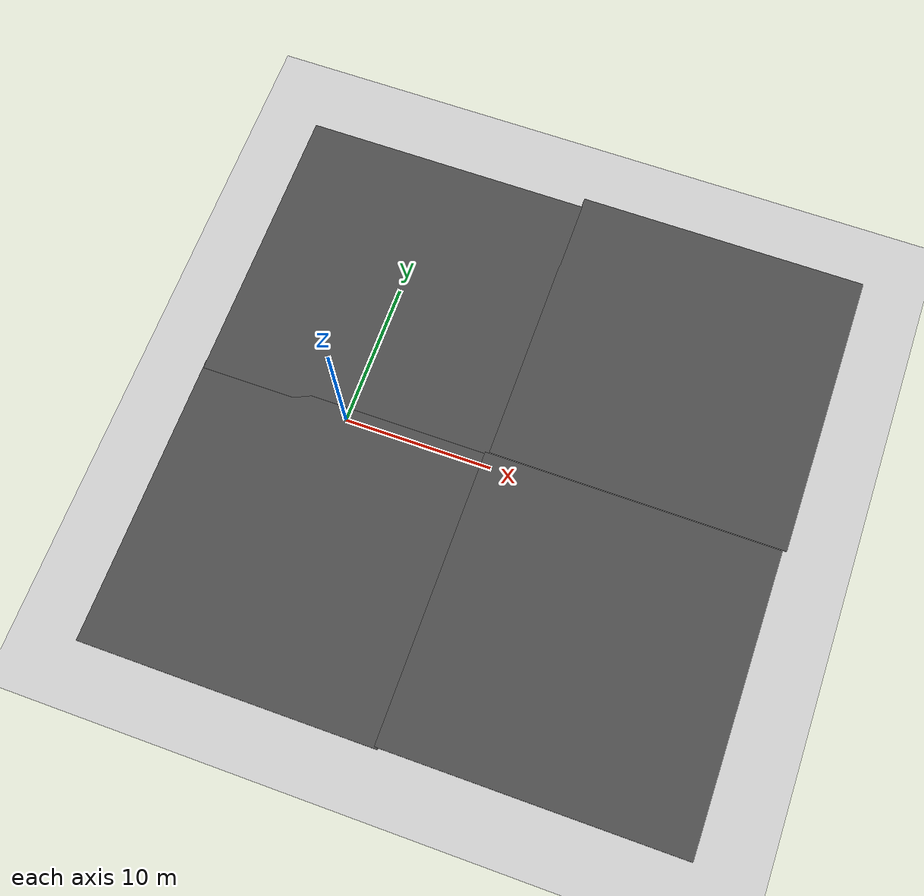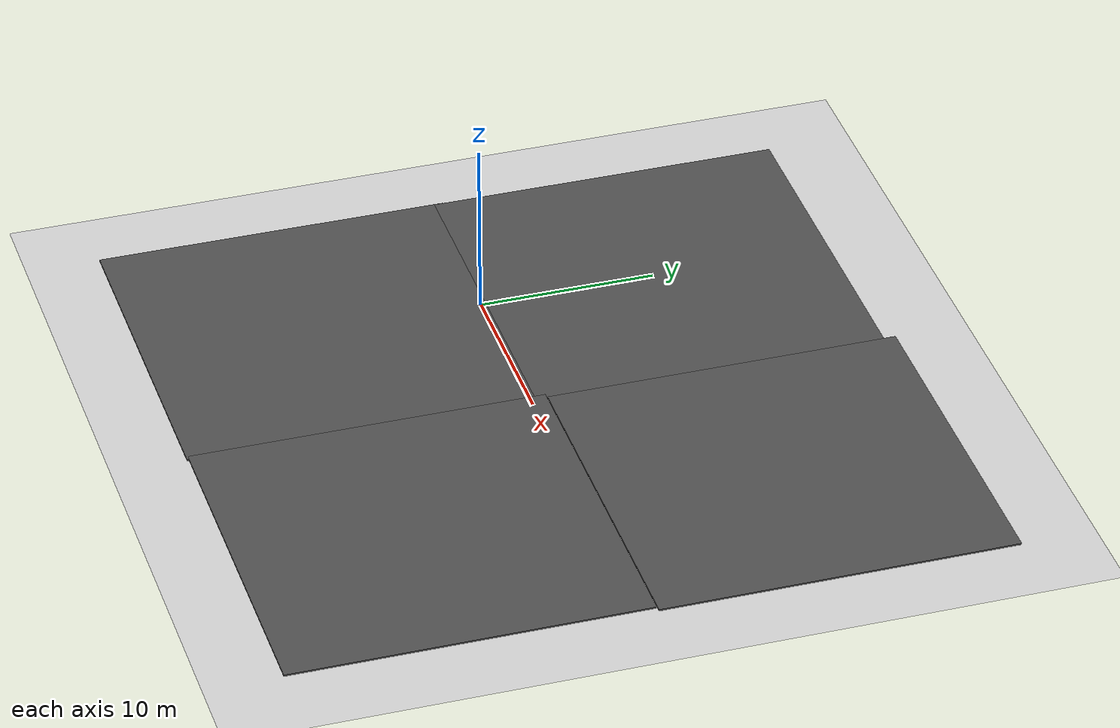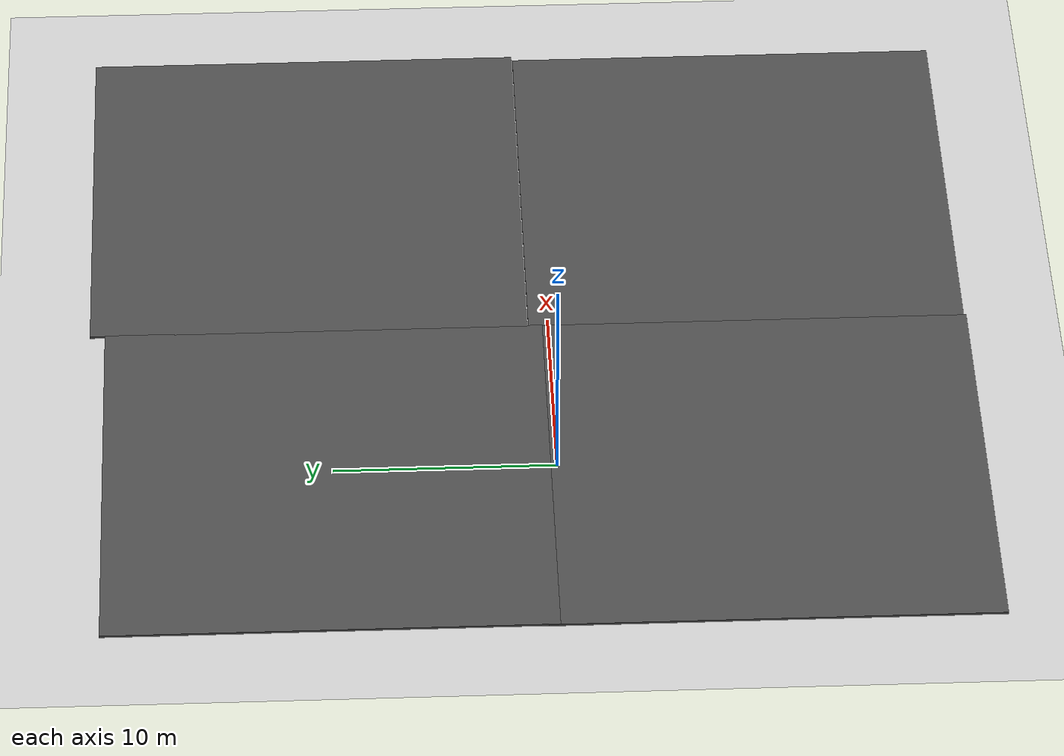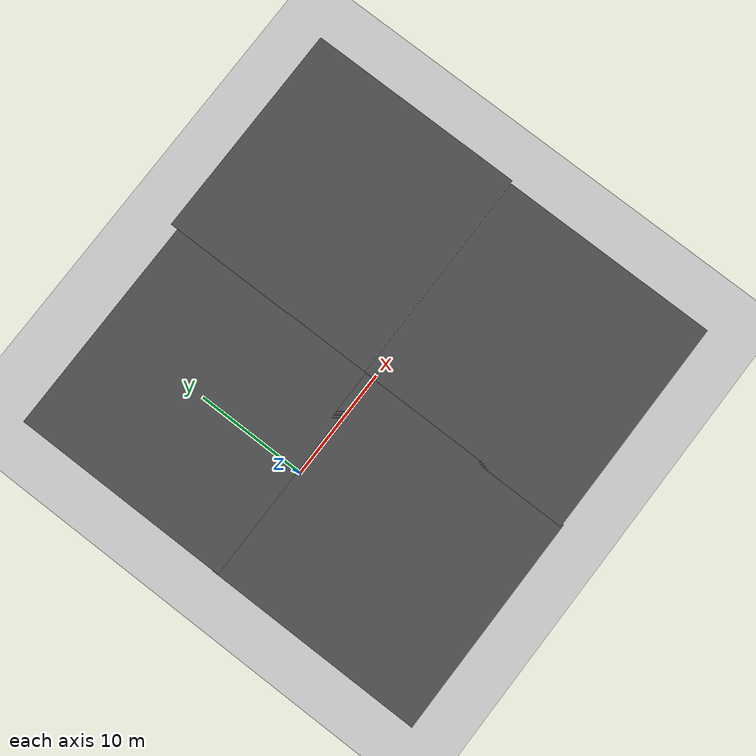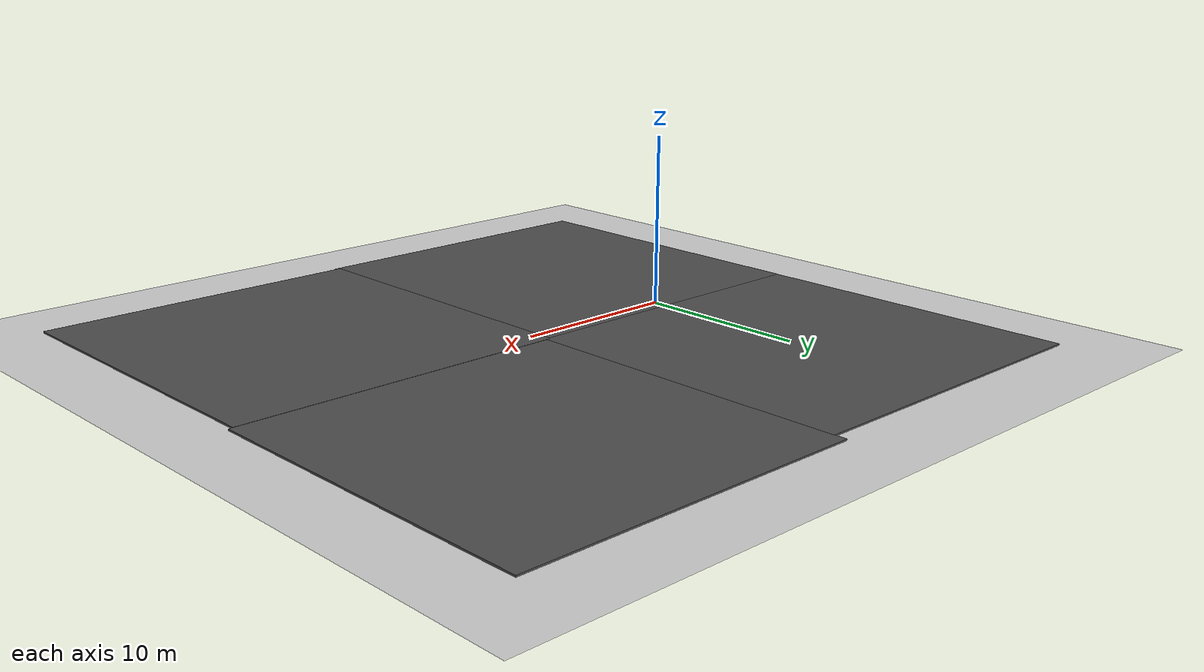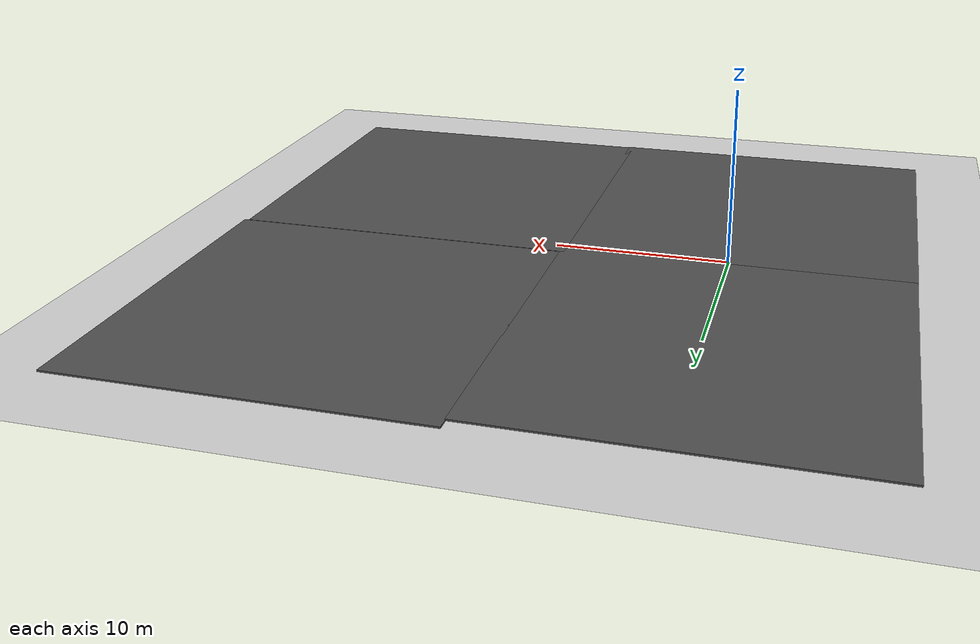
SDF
<sdf version="1.6">
 <world name="default">
  <light name="sun" type="directional">
   <pose>0 0 10 0 -0 0</pose>
   <diffuse>0.8 0.8 0.8 1</diffuse>
   <specular>0.2 0.2 0.2 1</specular>
   <attenuation>
    <range>1000</range>
    <constant>0.9</constant>
    <linear>0.01</linear>
    <quadratic>0.001</quadratic>
   </attenuation>
   <direction>-0.5 0.1 -0.9</direction>
  </light>
  <model name="ground_plane">
   <static>1</static>
   <link name="link">
    <collision name="collision">
     <geometry><plane><normal>0 0 1</normal><size>100 100</size></plane></geometry>
     <surface><friction><ode><mu>100</mu><mu2>50</mu2></ode></friction></surface>
    </collision>
    <visual name="visual">
     <cast_shadows>0</cast_shadows>
     <geometry><plane><normal>0 0 1</normal><size>100 100</size></plane></geometry>
     <material>
      <script><uri>file://media/materials/scripts/gazebo.material</uri><name>Gazebo/Grey</name></script>
     </material>
    </visual>
   </link>
  </model>
  <gravity>0 0 -9.8</gravity>
  <magnetic_field>6e-06 2.3e-05 -4.2e-05</magnetic_field>
  <atmosphere type="adiabatic"/>
  <physics name="default_physics" default="0" type="ode">
   <max_step_size>0.001</max_step_size>
   <real_time_factor>1</real_time_factor>
   <real_time_update_rate>1000</real_time_update_rate>
  </physics>
  <scene><ambient>0.4 0.4 0.4 1</ambient><background>0.7 0.7 0.7 1</background><shadows>1</shadows></scene>
  <spherical_coordinates>
   <surface_model>EARTH_WGS84</surface_model>
   <latitude_deg>0</latitude_deg>
   <longitude_deg>0</longitude_deg>
   <elevation>0</elevation>
   <heading_deg>0</heading_deg>
  </spherical_coordinates>
  <model name="empty"><pose>0 1 0 0 -0 0</pose><static>1</static></model>
  <model name="asphalt_plane">
   <static>1</static>
   <link name="link">
    <collision name="collision"><geometry><box><size>20 20 0.1</size></box></geometry></collision>
    <visual name="visual">
     <cast_shadows>0</cast_shadows>
     <geometry><box><size>20 20 0.1</size></box></geometry>
     <material>
      <script>
       <uri>model://asphalt_plane/materials/scripts</uri>
       <uri>model://asphalt_plane/materials/textures</uri>
       <name>vrc/asphalt</name>
      </script>
     </material>
    </visual>
   </link>
   <pose>-0.358237 -9.18782 0 0 -0 0</pose>
  </model>
  <model name="asphalt_plane_0">
   <static>1</static>
   <link name="link">
    <collision name="collision"><geometry><box><size>20 20 0.1</size></box></geometry></collision>
    <visual name="visual">
     <cast_shadows>0</cast_shadows>
     <geometry><box><size>20 20 0.1</size></box></geometry>
     <material>
      <script>
       <uri>model://asphalt_plane/materials/scripts</uri>
       <uri>model://asphalt_plane/materials/textures</uri>
       <name>vrc/asphalt</name>
      </script>
     </material>
    </visual>
   </link>
   <pose>-0.330024 10.29 0 0 -0 0</pose>
  </model>
  <model name="asphalt_plane_1">
   <static>1</static>
   <link name="link">
    <collision name="collision"><geometry><box><size>20 20 0.1</size></box></geometry></collision>
    <visual name="visual">
     <cast_shadows>0</cast_shadows>
     <geometry><box><size>20 20 0.1</size></box></geometry>
     <material>
      <script>
       <uri>model://asphalt_plane/materials/scripts</uri>
       <uri>model://asphalt_plane/materials/textures</uri>
       <name>vrc/asphalt</name>
      </script>
     </material>
    </visual>
   </link>
   <pose>19.3583 -9.07599 0 0 -0 0</pose>
  </model>
  <model name="asphalt_plane_2">
   <static>1</static>
   <link name="link">
    <collision name="collision"><geometry><box><size>20 20 0.1</size></box></geometry></collision>
    <visual name="visual">
     <cast_shadows>0</cast_shadows>
     <geometry><box><size>20 20 0.1</size></box></geometry>
     <material>
      <script>
       <uri>model://asphalt_plane/materials/scripts</uri>
       <uri>model://asphalt_plane/materials/textures</uri>
       <name>vrc/asphalt</name>
      </script>
     </material>
    </visual>
   </link>
   <pose>19.6191 10.9678 0 0 -0 0</pose>
  </model>
 </world>
</sdf>
